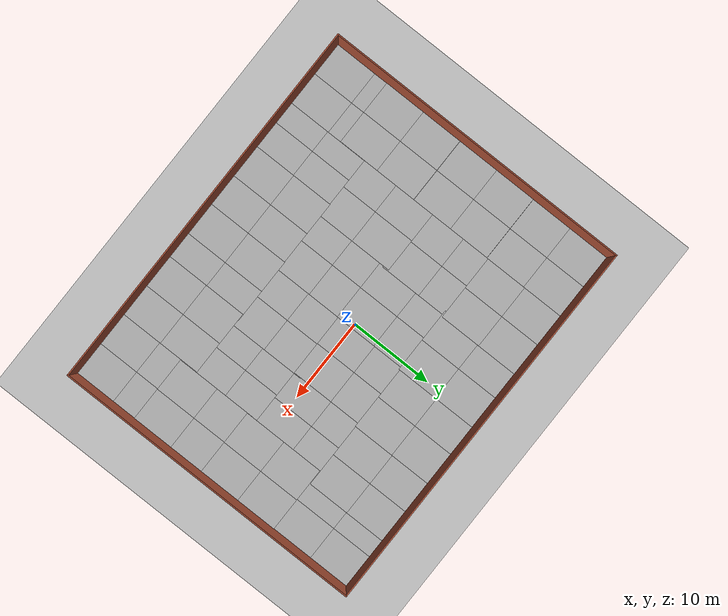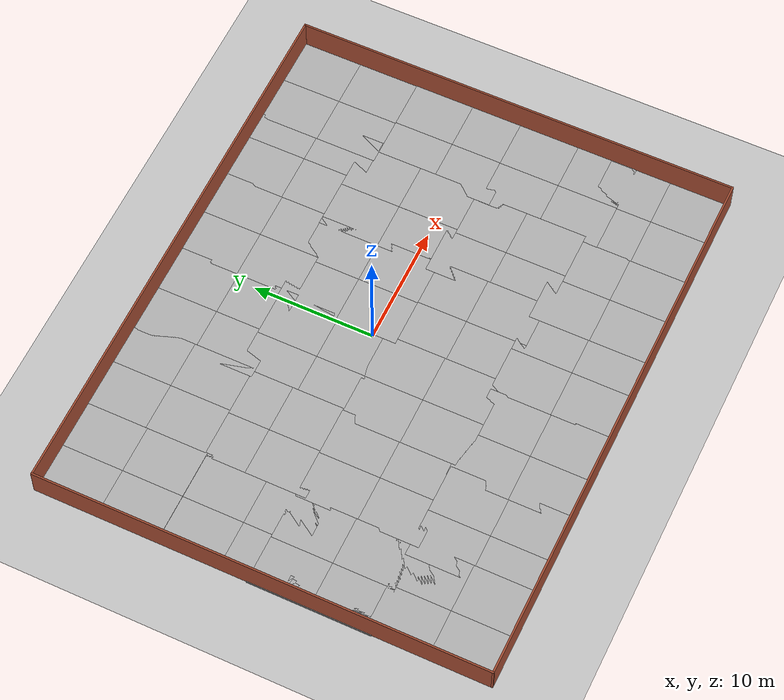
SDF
<sdf version="1.6">
 <world name="default">
  <light name="sun" type="directional">
   <pose>0 0 10 0 -0 0</pose>
   <diffuse>0.8 0.8 0.8 1</diffuse>
   <specular>0.1 0.1 0.1 1</specular>
   <attenuation>
    <range>1000</range>
    <constant>0.9</constant>
    <linear>0.01</linear>
    <quadratic>0.001</quadratic>
   </attenuation>
   <direction>-0.5 0.5 -1</direction>
  </light>
  <model name="ground_plane">
   <static>1</static>
   <link name="link">
    <collision name="collision">
     <geometry><plane><normal>0 0 1</normal><size>100 100</size></plane></geometry>
     <surface><friction><ode><mu>100</mu><mu2>50</mu2></ode></friction></surface>
    </collision>
    <visual name="visual">
     <cast_shadows>0</cast_shadows>
     <geometry><plane><normal>0 0 1</normal><size>100 100</size></plane></geometry>
     <material>
      <script><uri>file://media/materials/scripts/gazebo.material</uri><name>Gazebo/Grey</name></script>
     </material>
    </visual>
   </link>
  </model>
  <gravity>0 0 -9.8</gravity>
  <magnetic_field>6e-06 2.3e-05 -4.2e-05</magnetic_field>
  <atmosphere type="adiabatic"/>
  <physics name="default_physics" default="0" type="ode">
   <max_step_size>0.001</max_step_size>
   <real_time_factor>1</real_time_factor>
   <real_time_update_rate>1000</real_time_update_rate>
  </physics>
  <scene><ambient>0.4 0.4 0.4 1</ambient><background>0.7 0.7 0.7 1</background><shadows>1</shadows></scene>
  <spherical_coordinates>
   <surface_model>EARTH_WGS84</surface_model>
   <latitude_deg>0</latitude_deg>
   <longitude_deg>0</longitude_deg>
   <elevation>0</elevation>
   <heading_deg>0</heading_deg>
  </spherical_coordinates>
  <model name="PP_test_1">
   <pose>0.07916 -1.65832 0 0 -0 0</pose>
   <link name="Wall_11">
    <collision name="Wall_11_Collision">
     <geometry><box><size>37 0.15 2.5</size></box></geometry>
     <pose>0 0 1.25 0 -0 0</pose>
    </collision>
    <visual name="Wall_11_Visual">
     <pose>0 0 1.25 0 -0 0</pose>
     <geometry><box><size>37 0.15 2.5</size></box></geometry>
     <material>
      <script><uri>file://media/materials/scripts/gazebo.material</uri><name>Gazebo/Bricks</name></script>
      <ambient>1 1 1 1</ambient>
     </material>
    </visual>
    <pose>22.55 0 0 0 0 -1.5708</pose>
   </link>
   <link name="Wall_12">
    <collision name="Wall_12_Collision">
     <geometry><box><size>45.25 0.15 2.5</size></box></geometry>
     <pose>0 0 1.25 0 -0 0</pose>
    </collision>
    <visual name="Wall_12_Visual">
     <pose>0 0 1.25 0 -0 0</pose>
     <geometry><box><size>45.25 0.15 2.5</size></box></geometry>
     <material>
      <script><uri>file://media/materials/scripts/gazebo.material</uri><name>Gazebo/Bricks</name></script>
      <ambient>1 1 1 1</ambient>
     </material>
    </visual>
    <pose>-1e-06 -18.425 0 0 -0 3.14159</pose>
   </link>
   <link name="Wall_13">
    <collision name="Wall_13_Collision">
     <geometry><box><size>37 0.15 2.5</size></box></geometry>
     <pose>0 0 1.25 0 -0 0</pose>
    </collision>
    <visual name="Wall_13_Visual">
     <pose>0 0 1.25 0 -0 0</pose>
     <geometry><box><size>37 0.15 2.5</size></box></geometry>
     <material>
      <script><uri>file://media/materials/scripts/gazebo.material</uri><name>Gazebo/Bricks</name></script>
      <ambient>1 1 1 1</ambient>
     </material>
    </visual>
    <pose>-22.55 0 0 0 -0 1.5708</pose>
   </link>
   <link name="Wall_15">
    <collision name="Wall_15_Collision">
     <geometry><box><size>45.25 0.15 2.5</size></box></geometry>
     <pose>0 0 1.25 0 -0 0</pose>
    </collision>
    <visual name="Wall_15_Visual">
     <pose>0 0 1.25 0 -0 0</pose>
     <geometry><box><size>45.25 0.15 2.5</size></box></geometry>
     <material>
      <script><uri>file://media/materials/scripts/gazebo.material</uri><name>Gazebo/Bricks</name></script>
      <ambient>1 1 1 1</ambient>
     </material>
    </visual>
    <pose>-1e-06 18.425 0 0 -0 0</pose>
   </link>
   <static>1</static>
  </model>
  <model name="mud_box_0">
   <static>1</static>
   <link name="link">
    <collision name="collision"><geometry><box><size>8 10 0.2</size></box></geometry></collision>
    <visual name="visual_1">
     <pose>-2 2.5 0 0 -0 0</pose>
     <cast_shadows>0</cast_shadows>
     <geometry><box><size>4 5 0.2</size></box></geometry>
     <material>
      <script>
       <uri>model://mud_box/materials/scripts</uri>
       <uri>model://mud_box/materials/textures</uri>
       <name>vrc/mud</name>
      </script>
     </material>
    </visual>
    <visual name="visual_2">
     <pose>2 2.5 0 0 -0 0</pose>
     <cast_shadows>0</cast_shadows>
     <geometry><box><size>4 5 0.2</size></box></geometry>
     <material>
      <script>
       <uri>model://mud_box/materials/scripts</uri>
       <uri>model://mud_box/materials/textures</uri>
       <name>vrc/mud</name>
      </script>
     </material>
    </visual>
    <visual name="visual_3">
     <pose>2 -2.5 0 0 -0 0</pose>
     <cast_shadows>0</cast_shadows>
     <geometry><box><size>4 5 0.2</size></box></geometry>
     <material>
      <script>
       <uri>model://mud_box/materials/scripts</uri>
       <uri>model://mud_box/materials/textures</uri>
       <name>vrc/mud</name>
      </script>
     </material>
    </visual>
    <visual name="visual_4">
     <pose>-2 -2.5 0 0 -0 0</pose>
     <cast_shadows>0</cast_shadows>
     <geometry><box><size>4 5 0.2</size></box></geometry>
     <material>
      <script>
       <uri>model://mud_box/materials/scripts</uri>
       <uri>model://mud_box/materials/textures</uri>
       <name>vrc/mud</name>
      </script>
     </material>
    </visual>
   </link>
   <pose>-18.386 11.6849 0 0 -0 0</pose>
  </model>
  <model name="mud_box_0_clone">
   <static>1</static>
   <link name="link">
    <collision name="collision"><geometry><box><size>8 10 0.2</size></box></geometry></collision>
    <visual name="visual_1">
     <pose>-2 2.5 0 0 -0 0</pose>
     <cast_shadows>0</cast_shadows>
     <geometry><box><size>4 5 0.2</size></box></geometry>
     <material>
      <script>
       <uri>model://mud_box/materials/scripts</uri>
       <uri>model://mud_box/materials/textures</uri>
       <name>vrc/mud</name>
      </script>
     </material>
    </visual>
    <visual name="visual_2">
     <pose>2 2.5 0 0 -0 0</pose>
     <cast_shadows>0</cast_shadows>
     <geometry><box><size>4 5 0.2</size></box></geometry>
     <material>
      <script>
       <uri>model://mud_box/materials/scripts</uri>
       <uri>model://mud_box/materials/textures</uri>
       <name>vrc/mud</name>
      </script>
     </material>
    </visual>
    <visual name="visual_3">
     <pose>2 -2.5 0 0 -0 0</pose>
     <cast_shadows>0</cast_shadows>
     <geometry><box><size>4 5 0.2</size></box></geometry>
     <material>
      <script>
       <uri>model://mud_box/materials/scripts</uri>
       <uri>model://mud_box/materials/textures</uri>
       <name>vrc/mud</name>
      </script>
     </material>
    </visual>
    <visual name="visual_4">
     <pose>-2 -2.5 0 0 -0 0</pose>
     <cast_shadows>0</cast_shadows>
     <geometry><box><size>4 5 0.2</size></box></geometry>
     <material>
      <script>
       <uri>model://mud_box/materials/scripts</uri>
       <uri>model://mud_box/materials/textures</uri>
       <name>vrc/mud</name>
      </script>
     </material>
    </visual>
   </link>
   <pose>-18.3975 1.66408 0 0 -0 0</pose>
  </model>
  <model name="mud_box_0_clone_0">
   <static>1</static>
   <link name="link">
    <collision name="collision"><geometry><box><size>8 10 0.2</size></box></geometry></collision>
    <visual name="visual_1">
     <pose>-2 2.5 0 0 -0 0</pose>
     <cast_shadows>0</cast_shadows>
     <geometry><box><size>4 5 0.2</size></box></geometry>
     <material>
      <script>
       <uri>model://mud_box/materials/scripts</uri>
       <uri>model://mud_box/materials/textures</uri>
       <name>vrc/mud</name>
      </script>
     </material>
    </visual>
    <visual name="visual_2">
     <pose>2 2.5 0 0 -0 0</pose>
     <cast_shadows>0</cast_shadows>
     <geometry><box><size>4 5 0.2</size></box></geometry>
     <material>
      <script>
       <uri>model://mud_box/materials/scripts</uri>
       <uri>model://mud_box/materials/textures</uri>
       <name>vrc/mud</name>
      </script>
     </material>
    </visual>
    <visual name="visual_3">
     <pose>2 -2.5 0 0 -0 0</pose>
     <cast_shadows>0</cast_shadows>
     <geometry><box><size>4 5 0.2</size></box></geometry>
     <material>
      <script>
       <uri>model://mud_box/materials/scripts</uri>
       <uri>model://mud_box/materials/textures</uri>
       <name>vrc/mud</name>
      </script>
     </material>
    </visual>
    <visual name="visual_4">
     <pose>-2 -2.5 0 0 -0 0</pose>
     <cast_shadows>0</cast_shadows>
     <geometry><box><size>4 5 0.2</size></box></geometry>
     <material>
      <script>
       <uri>model://mud_box/materials/scripts</uri>
       <uri>model://mud_box/materials/textures</uri>
       <name>vrc/mud</name>
      </script>
     </material>
    </visual>
   </link>
   <pose>-18.4007 -8.3714 0 0 -0 0</pose>
  </model>
  <model name="mud_box_0_clone_0_clone">
   <static>1</static>
   <link name="link">
    <collision name="collision"><geometry><box><size>8 10 0.2</size></box></geometry></collision>
    <visual name="visual_1">
     <pose>-2 2.5 0 0 -0 0</pose>
     <cast_shadows>0</cast_shadows>
     <geometry><box><size>4 5 0.2</size></box></geometry>
     <material>
      <script>
       <uri>model://mud_box/materials/scripts</uri>
       <uri>model://mud_box/materials/textures</uri>
       <name>vrc/mud</name>
      </script>
     </material>
    </visual>
    <visual name="visual_2">
     <pose>2 2.5 0 0 -0 0</pose>
     <cast_shadows>0</cast_shadows>
     <geometry><box><size>4 5 0.2</size></box></geometry>
     <material>
      <script>
       <uri>model://mud_box/materials/scripts</uri>
       <uri>model://mud_box/materials/textures</uri>
       <name>vrc/mud</name>
      </script>
     </material>
    </visual>
    <visual name="visual_3">
     <pose>2 -2.5 0 0 -0 0</pose>
     <cast_shadows>0</cast_shadows>
     <geometry><box><size>4 5 0.2</size></box></geometry>
     <material>
      <script>
       <uri>model://mud_box/materials/scripts</uri>
       <uri>model://mud_box/materials/textures</uri>
       <name>vrc/mud</name>
      </script>
     </material>
    </visual>
    <visual name="visual_4">
     <pose>-2 -2.5 0 0 -0 0</pose>
     <cast_shadows>0</cast_shadows>
     <geometry><box><size>4 5 0.2</size></box></geometry>
     <material>
      <script>
       <uri>model://mud_box/materials/scripts</uri>
       <uri>model://mud_box/materials/textures</uri>
       <name>vrc/mud</name>
      </script>
     </material>
    </visual>
   </link>
   <pose>-18.3721 -15.0101 0 0 -0 0</pose>
  </model>
  <model name="mud_box_0_clone_0_clone_0">
   <static>1</static>
   <link name="link">
    <collision name="collision"><geometry><box><size>8 10 0.2</size></box></geometry></collision>
    <visual name="visual_1">
     <pose>-2 2.5 0 0 -0 0</pose>
     <cast_shadows>0</cast_shadows>
     <geometry><box><size>4 5 0.2</size></box></geometry>
     <material>
      <script>
       <uri>model://mud_box/materials/scripts</uri>
       <uri>model://mud_box/materials/textures</uri>
       <name>vrc/mud</name>
      </script>
     </material>
    </visual>
    <visual name="visual_2">
     <pose>2 2.5 0 0 -0 0</pose>
     <cast_shadows>0</cast_shadows>
     <geometry><box><size>4 5 0.2</size></box></geometry>
     <material>
      <script>
       <uri>model://mud_box/materials/scripts</uri>
       <uri>model://mud_box/materials/textures</uri>
       <name>vrc/mud</name>
      </script>
     </material>
    </visual>
    <visual name="visual_3">
     <pose>2 -2.5 0 0 -0 0</pose>
     <cast_shadows>0</cast_shadows>
     <geometry><box><size>4 5 0.2</size></box></geometry>
     <material>
      <script>
       <uri>model://mud_box/materials/scripts</uri>
       <uri>model://mud_box/materials/textures</uri>
       <name>vrc/mud</name>
      </script>
     </material>
    </visual>
    <visual name="visual_4">
     <pose>-2 -2.5 0 0 -0 0</pose>
     <cast_shadows>0</cast_shadows>
     <geometry><box><size>4 5 0.2</size></box></geometry>
     <material>
      <script>
       <uri>model://mud_box/materials/scripts</uri>
       <uri>model://mud_box/materials/textures</uri>
       <name>vrc/mud</name>
      </script>
     </material>
    </visual>
   </link>
   <pose>-18.5856 -5.66079 0 0 -0 0</pose>
  </model>
  <model name="mud_box_0_clone_0_clone_1">
   <static>1</static>
   <link name="link">
    <collision name="collision"><geometry><box><size>8 10 0.2</size></box></geometry></collision>
    <visual name="visual_1">
     <pose>-2 2.5 0 0 -0 0</pose>
     <cast_shadows>0</cast_shadows>
     <geometry><box><size>4 5 0.2</size></box></geometry>
     <material>
      <script>
       <uri>model://mud_box/materials/scripts</uri>
       <uri>model://mud_box/materials/textures</uri>
       <name>vrc/mud</name>
      </script>
     </material>
    </visual>
    <visual name="visual_2">
     <pose>2 2.5 0 0 -0 0</pose>
     <cast_shadows>0</cast_shadows>
     <geometry><box><size>4 5 0.2</size></box></geometry>
     <material>
      <script>
       <uri>model://mud_box/materials/scripts</uri>
       <uri>model://mud_box/materials/textures</uri>
       <name>vrc/mud</name>
      </script>
     </material>
    </visual>
    <visual name="visual_3">
     <pose>2 -2.5 0 0 -0 0</pose>
     <cast_shadows>0</cast_shadows>
     <geometry><box><size>4 5 0.2</size></box></geometry>
     <material>
      <script>
       <uri>model://mud_box/materials/scripts</uri>
       <uri>model://mud_box/materials/textures</uri>
       <name>vrc/mud</name>
      </script>
     </material>
    </visual>
    <visual name="visual_4">
     <pose>-2 -2.5 0 0 -0 0</pose>
     <cast_shadows>0</cast_shadows>
     <geometry><box><size>4 5 0.2</size></box></geometry>
     <material>
      <script>
       <uri>model://mud_box/materials/scripts</uri>
       <uri>model://mud_box/materials/textures</uri>
       <name>vrc/mud</name>
      </script>
     </material>
    </visual>
   </link>
   <pose>-10.4439 11.8295 0 0 -0 0</pose>
  </model>
  <model name="mud_box_0_clone_0_clone_2">
   <static>1</static>
   <link name="link">
    <collision name="collision"><geometry><box><size>8 10 0.2</size></box></geometry></collision>
    <visual name="visual_1">
     <pose>-2 2.5 0 0 -0 0</pose>
     <cast_shadows>0</cast_shadows>
     <geometry><box><size>4 5 0.2</size></box></geometry>
     <material>
      <script>
       <uri>model://mud_box/materials/scripts</uri>
       <uri>model://mud_box/materials/textures</uri>
       <name>vrc/mud</name>
      </script>
     </material>
    </visual>
    <visual name="visual_2">
     <pose>2 2.5 0 0 -0 0</pose>
     <cast_shadows>0</cast_shadows>
     <geometry><box><size>4 5 0.2</size></box></geometry>
     <material>
      <script>
       <uri>model://mud_box/materials/scripts</uri>
       <uri>model://mud_box/materials/textures</uri>
       <name>vrc/mud</name>
      </script>
     </material>
    </visual>
    <visual name="visual_3">
     <pose>2 -2.5 0 0 -0 0</pose>
     <cast_shadows>0</cast_shadows>
     <geometry><box><size>4 5 0.2</size></box></geometry>
     <material>
      <script>
       <uri>model://mud_box/materials/scripts</uri>
       <uri>model://mud_box/materials/textures</uri>
       <name>vrc/mud</name>
      </script>
     </material>
    </visual>
    <visual name="visual_4">
     <pose>-2 -2.5 0 0 -0 0</pose>
     <cast_shadows>0</cast_shadows>
     <geometry><box><size>4 5 0.2</size></box></geometry>
     <material>
      <script>
       <uri>model://mud_box/materials/scripts</uri>
       <uri>model://mud_box/materials/textures</uri>
       <name>vrc/mud</name>
      </script>
     </material>
    </visual>
   </link>
   <pose>-3.1785 11.6817 0 0 -0 0</pose>
  </model>
  <model name="mud_box_0_clone_0_clone_3">
   <static>1</static>
   <link name="link">
    <collision name="collision"><geometry><box><size>8 10 0.2</size></box></geometry></collision>
    <visual name="visual_1">
     <pose>-2 2.5 0 0 -0 0</pose>
     <cast_shadows>0</cast_shadows>
     <geometry><box><size>4 5 0.2</size></box></geometry>
     <material>
      <script>
       <uri>model://mud_box/materials/scripts</uri>
       <uri>model://mud_box/materials/textures</uri>
       <name>vrc/mud</name>
      </script>
     </material>
    </visual>
    <visual name="visual_2">
     <pose>2 2.5 0 0 -0 0</pose>
     <cast_shadows>0</cast_shadows>
     <geometry><box><size>4 5 0.2</size></box></geometry>
     <material>
      <script>
       <uri>model://mud_box/materials/scripts</uri>
       <uri>model://mud_box/materials/textures</uri>
       <name>vrc/mud</name>
      </script>
     </material>
    </visual>
    <visual name="visual_3">
     <pose>2 -2.5 0 0 -0 0</pose>
     <cast_shadows>0</cast_shadows>
     <geometry><box><size>4 5 0.2</size></box></geometry>
     <material>
      <script>
       <uri>model://mud_box/materials/scripts</uri>
       <uri>model://mud_box/materials/textures</uri>
       <name>vrc/mud</name>
      </script>
     </material>
    </visual>
    <visual name="visual_4">
     <pose>-2 -2.5 0 0 -0 0</pose>
     <cast_shadows>0</cast_shadows>
     <geometry><box><size>4 5 0.2</size></box></geometry>
     <material>
      <script>
       <uri>model://mud_box/materials/scripts</uri>
       <uri>model://mud_box/materials/textures</uri>
       <name>vrc/mud</name>
      </script>
     </material>
    </visual>
   </link>
   <pose>4.51951 11.8195 0 0 -0 0</pose>
  </model>
  <model name="mud_box_0_clone_0_clone_4">
   <static>1</static>
   <link name="link">
    <collision name="collision"><geometry><box><size>8 10 0.2</size></box></geometry></collision>
    <visual name="visual_1">
     <pose>-2 2.5 0 0 -0 0</pose>
     <cast_shadows>0</cast_shadows>
     <geometry><box><size>4 5 0.2</size></box></geometry>
     <material>
      <script>
       <uri>model://mud_box/materials/scripts</uri>
       <uri>model://mud_box/materials/textures</uri>
       <name>vrc/mud</name>
      </script>
     </material>
    </visual>
    <visual name="visual_2">
     <pose>2 2.5 0 0 -0 0</pose>
     <cast_shadows>0</cast_shadows>
     <geometry><box><size>4 5 0.2</size></box></geometry>
     <material>
      <script>
       <uri>model://mud_box/materials/scripts</uri>
       <uri>model://mud_box/materials/textures</uri>
       <name>vrc/mud</name>
      </script>
     </material>
    </visual>
    <visual name="visual_3">
     <pose>2 -2.5 0 0 -0 0</pose>
     <cast_shadows>0</cast_shadows>
     <geometry><box><size>4 5 0.2</size></box></geometry>
     <material>
      <script>
       <uri>model://mud_box/materials/scripts</uri>
       <uri>model://mud_box/materials/textures</uri>
       <name>vrc/mud</name>
      </script>
     </material>
    </visual>
    <visual name="visual_4">
     <pose>-2 -2.5 0 0 -0 0</pose>
     <cast_shadows>0</cast_shadows>
     <geometry><box><size>4 5 0.2</size></box></geometry>
     <material>
      <script>
       <uri>model://mud_box/materials/scripts</uri>
       <uri>model://mud_box/materials/textures</uri>
       <name>vrc/mud</name>
      </script>
     </material>
    </visual>
   </link>
   <pose>12.3538 11.8794 0 0 -0 0</pose>
  </model>
  <model name="mud_box_0_clone_0_clone_5">
   <static>1</static>
   <link name="link">
    <collision name="collision"><geometry><box><size>8 10 0.2</size></box></geometry></collision>
    <visual name="visual_1">
     <pose>-2 2.5 0 0 -0 0</pose>
     <cast_shadows>0</cast_shadows>
     <geometry><box><size>4 5 0.2</size></box></geometry>
     <material>
      <script>
       <uri>model://mud_box/materials/scripts</uri>
       <uri>model://mud_box/materials/textures</uri>
       <name>vrc/mud</name>
      </script>
     </material>
    </visual>
    <visual name="visual_2">
     <pose>2 2.5 0 0 -0 0</pose>
     <cast_shadows>0</cast_shadows>
     <geometry><box><size>4 5 0.2</size></box></geometry>
     <material>
      <script>
       <uri>model://mud_box/materials/scripts</uri>
       <uri>model://mud_box/materials/textures</uri>
       <name>vrc/mud</name>
      </script>
     </material>
    </visual>
    <visual name="visual_3">
     <pose>2 -2.5 0 0 -0 0</pose>
     <cast_shadows>0</cast_shadows>
     <geometry><box><size>4 5 0.2</size></box></geometry>
     <material>
      <script>
       <uri>model://mud_box/materials/scripts</uri>
       <uri>model://mud_box/materials/textures</uri>
       <name>vrc/mud</name>
      </script>
     </material>
    </visual>
    <visual name="visual_4">
     <pose>-2 -2.5 0 0 -0 0</pose>
     <cast_shadows>0</cast_shadows>
     <geometry><box><size>4 5 0.2</size></box></geometry>
     <material>
      <script>
       <uri>model://mud_box/materials/scripts</uri>
       <uri>model://mud_box/materials/textures</uri>
       <name>vrc/mud</name>
      </script>
     </material>
    </visual>
   </link>
   <pose>18.5211 11.8232 0 0 -0 0</pose>
  </model>
  <model name="mud_box_0_clone_0_clone_6">
   <static>1</static>
   <link name="link">
    <collision name="collision"><geometry><box><size>8 10 0.2</size></box></geometry></collision>
    <visual name="visual_1">
     <pose>-2 2.5 0 0 -0 0</pose>
     <cast_shadows>0</cast_shadows>
     <geometry><box><size>4 5 0.2</size></box></geometry>
     <material>
      <script>
       <uri>model://mud_box/materials/scripts</uri>
       <uri>model://mud_box/materials/textures</uri>
       <name>vrc/mud</name>
      </script>
     </material>
    </visual>
    <visual name="visual_2">
     <pose>2 2.5 0 0 -0 0</pose>
     <cast_shadows>0</cast_shadows>
     <geometry><box><size>4 5 0.2</size></box></geometry>
     <material>
      <script>
       <uri>model://mud_box/materials/scripts</uri>
       <uri>model://mud_box/materials/textures</uri>
       <name>vrc/mud</name>
      </script>
     </material>
    </visual>
    <visual name="visual_3">
     <pose>2 -2.5 0 0 -0 0</pose>
     <cast_shadows>0</cast_shadows>
     <geometry><box><size>4 5 0.2</size></box></geometry>
     <material>
      <script>
       <uri>model://mud_box/materials/scripts</uri>
       <uri>model://mud_box/materials/textures</uri>
       <name>vrc/mud</name>
      </script>
     </material>
    </visual>
    <visual name="visual_4">
     <pose>-2 -2.5 0 0 -0 0</pose>
     <cast_shadows>0</cast_shadows>
     <geometry><box><size>4 5 0.2</size></box></geometry>
     <material>
      <script>
       <uri>model://mud_box/materials/scripts</uri>
       <uri>model://mud_box/materials/textures</uri>
       <name>vrc/mud</name>
      </script>
     </material>
    </visual>
   </link>
   <pose>18.5976 1.88863 0 0 -0 0</pose>
  </model>
  <model name="mud_box_0_clone_0_clone_7">
   <static>1</static>
   <link name="link">
    <collision name="collision"><geometry><box><size>8 10 0.2</size></box></geometry></collision>
    <visual name="visual_1">
     <pose>-2 2.5 0 0 -0 0</pose>
     <cast_shadows>0</cast_shadows>
     <geometry><box><size>4 5 0.2</size></box></geometry>
     <material>
      <script>
       <uri>model://mud_box/materials/scripts</uri>
       <uri>model://mud_box/materials/textures</uri>
       <name>vrc/mud</name>
      </script>
     </material>
    </visual>
    <visual name="visual_2">
     <pose>2 2.5 0 0 -0 0</pose>
     <cast_shadows>0</cast_shadows>
     <geometry><box><size>4 5 0.2</size></box></geometry>
     <material>
      <script>
       <uri>model://mud_box/materials/scripts</uri>
       <uri>model://mud_box/materials/textures</uri>
       <name>vrc/mud</name>
      </script>
     </material>
    </visual>
    <visual name="visual_3">
     <pose>2 -2.5 0 0 -0 0</pose>
     <cast_shadows>0</cast_shadows>
     <geometry><box><size>4 5 0.2</size></box></geometry>
     <material>
      <script>
       <uri>model://mud_box/materials/scripts</uri>
       <uri>model://mud_box/materials/textures</uri>
       <name>vrc/mud</name>
      </script>
     </material>
    </visual>
    <visual name="visual_4">
     <pose>-2 -2.5 0 0 -0 0</pose>
     <cast_shadows>0</cast_shadows>
     <geometry><box><size>4 5 0.2</size></box></geometry>
     <material>
      <script>
       <uri>model://mud_box/materials/scripts</uri>
       <uri>model://mud_box/materials/textures</uri>
       <name>vrc/mud</name>
      </script>
     </material>
    </visual>
   </link>
   <pose>18.5751 -7.26582 0 0 -0 0</pose>
  </model>
  <model name="mud_box_0_clone_0_clone_8">
   <static>1</static>
   <link name="link">
    <collision name="collision"><geometry><box><size>8 10 0.2</size></box></geometry></collision>
    <visual name="visual_1">
     <pose>-2 2.5 0 0 -0 0</pose>
     <cast_shadows>0</cast_shadows>
     <geometry><box><size>4 5 0.2</size></box></geometry>
     <material>
      <script>
       <uri>model://mud_box/materials/scripts</uri>
       <uri>model://mud_box/materials/textures</uri>
       <name>vrc/mud</name>
      </script>
     </material>
    </visual>
    <visual name="visual_2">
     <pose>2 2.5 0 0 -0 0</pose>
     <cast_shadows>0</cast_shadows>
     <geometry><box><size>4 5 0.2</size></box></geometry>
     <material>
      <script>
       <uri>model://mud_box/materials/scripts</uri>
       <uri>model://mud_box/materials/textures</uri>
       <name>vrc/mud</name>
      </script>
     </material>
    </visual>
    <visual name="visual_3">
     <pose>2 -2.5 0 0 -0 0</pose>
     <cast_shadows>0</cast_shadows>
     <geometry><box><size>4 5 0.2</size></box></geometry>
     <material>
      <script>
       <uri>model://mud_box/materials/scripts</uri>
       <uri>model://mud_box/materials/textures</uri>
       <name>vrc/mud</name>
      </script>
     </material>
    </visual>
    <visual name="visual_4">
     <pose>-2 -2.5 0 0 -0 0</pose>
     <cast_shadows>0</cast_shadows>
     <geometry><box><size>4 5 0.2</size></box></geometry>
     <material>
      <script>
       <uri>model://mud_box/materials/scripts</uri>
       <uri>model://mud_box/materials/textures</uri>
       <name>vrc/mud</name>
      </script>
     </material>
    </visual>
   </link>
   <pose>18.5301 -15.1417 0 0 -0 0</pose>
  </model>
  <model name="mud_box_0_clone_0_clone_9">
   <static>1</static>
   <link name="link">
    <collision name="collision"><geometry><box><size>8 10 0.2</size></box></geometry></collision>
    <visual name="visual_1">
     <pose>-2 2.5 0 0 -0 0</pose>
     <cast_shadows>0</cast_shadows>
     <geometry><box><size>4 5 0.2</size></box></geometry>
     <material>
      <script>
       <uri>model://mud_box/materials/scripts</uri>
       <uri>model://mud_box/materials/textures</uri>
       <name>vrc/mud</name>
      </script>
     </material>
    </visual>
    <visual name="visual_2">
     <pose>2 2.5 0 0 -0 0</pose>
     <cast_shadows>0</cast_shadows>
     <geometry><box><size>4 5 0.2</size></box></geometry>
     <material>
      <script>
       <uri>model://mud_box/materials/scripts</uri>
       <uri>model://mud_box/materials/textures</uri>
       <name>vrc/mud</name>
      </script>
     </material>
    </visual>
    <visual name="visual_3">
     <pose>2 -2.5 0 0 -0 0</pose>
     <cast_shadows>0</cast_shadows>
     <geometry><box><size>4 5 0.2</size></box></geometry>
     <material>
      <script>
       <uri>model://mud_box/materials/scripts</uri>
       <uri>model://mud_box/materials/textures</uri>
       <name>vrc/mud</name>
      </script>
     </material>
    </visual>
    <visual name="visual_4">
     <pose>-2 -2.5 0 0 -0 0</pose>
     <cast_shadows>0</cast_shadows>
     <geometry><box><size>4 5 0.2</size></box></geometry>
     <material>
      <script>
       <uri>model://mud_box/materials/scripts</uri>
       <uri>model://mud_box/materials/textures</uri>
       <name>vrc/mud</name>
      </script>
     </material>
    </visual>
   </link>
   <pose>10.6001 -15.069 0 0 -0 0</pose>
  </model>
  <model name="mud_box_0_clone_0_clone_10">
   <static>1</static>
   <link name="link">
    <collision name="collision"><geometry><box><size>8 10 0.2</size></box></geometry></collision>
    <visual name="visual_1">
     <pose>-2 2.5 0 0 -0 0</pose>
     <cast_shadows>0</cast_shadows>
     <geometry><box><size>4 5 0.2</size></box></geometry>
     <material>
      <script>
       <uri>model://mud_box/materials/scripts</uri>
       <uri>model://mud_box/materials/textures</uri>
       <name>vrc/mud</name>
      </script>
     </material>
    </visual>
    <visual name="visual_2">
     <pose>2 2.5 0 0 -0 0</pose>
     <cast_shadows>0</cast_shadows>
     <geometry><box><size>4 5 0.2</size></box></geometry>
     <material>
      <script>
       <uri>model://mud_box/materials/scripts</uri>
       <uri>model://mud_box/materials/textures</uri>
       <name>vrc/mud</name>
      </script>
     </material>
    </visual>
    <visual name="visual_3">
     <pose>2 -2.5 0 0 -0 0</pose>
     <cast_shadows>0</cast_shadows>
     <geometry><box><size>4 5 0.2</size></box></geometry>
     <material>
      <script>
       <uri>model://mud_box/materials/scripts</uri>
       <uri>model://mud_box/materials/textures</uri>
       <name>vrc/mud</name>
      </script>
     </material>
    </visual>
    <visual name="visual_4">
     <pose>-2 -2.5 0 0 -0 0</pose>
     <cast_shadows>0</cast_shadows>
     <geometry><box><size>4 5 0.2</size></box></geometry>
     <material>
      <script>
       <uri>model://mud_box/materials/scripts</uri>
       <uri>model://mud_box/materials/textures</uri>
       <name>vrc/mud</name>
      </script>
     </material>
    </visual>
   </link>
   <pose>3.43965 -15.0021 0 0 -0 0</pose>
  </model>
  <model name="mud_box_0_clone_0_clone_11">
   <static>1</static>
   <link name="link">
    <collision name="collision"><geometry><box><size>8 10 0.2</size></box></geometry></collision>
    <visual name="visual_1">
     <pose>-2 2.5 0 0 -0 0</pose>
     <cast_shadows>0</cast_shadows>
     <geometry><box><size>4 5 0.2</size></box></geometry>
     <material>
      <script>
       <uri>model://mud_box/materials/scripts</uri>
       <uri>model://mud_box/materials/textures</uri>
       <name>vrc/mud</name>
      </script>
     </material>
    </visual>
    <visual name="visual_2">
     <pose>2 2.5 0 0 -0 0</pose>
     <cast_shadows>0</cast_shadows>
     <geometry><box><size>4 5 0.2</size></box></geometry>
     <material>
      <script>
       <uri>model://mud_box/materials/scripts</uri>
       <uri>model://mud_box/materials/textures</uri>
       <name>vrc/mud</name>
      </script>
     </material>
    </visual>
    <visual name="visual_3">
     <pose>2 -2.5 0 0 -0 0</pose>
     <cast_shadows>0</cast_shadows>
     <geometry><box><size>4 5 0.2</size></box></geometry>
     <material>
      <script>
       <uri>model://mud_box/materials/scripts</uri>
       <uri>model://mud_box/materials/textures</uri>
       <name>vrc/mud</name>
      </script>
     </material>
    </visual>
    <visual name="visual_4">
     <pose>-2 -2.5 0 0 -0 0</pose>
     <cast_shadows>0</cast_shadows>
     <geometry><box><size>4 5 0.2</size></box></geometry>
     <material>
      <script>
       <uri>model://mud_box/materials/scripts</uri>
       <uri>model://mud_box/materials/textures</uri>
       <name>vrc/mud</name>
      </script>
     </material>
    </visual>
   </link>
   <pose>-4.43407 -15.0408 0 0 -0 0</pose>
  </model>
  <model name="mud_box_0_clone_0_clone_12">
   <static>1</static>
   <link name="link">
    <collision name="collision"><geometry><box><size>8 10 0.2</size></box></geometry></collision>
    <visual name="visual_1">
     <pose>-2 2.5 0 0 -0 0</pose>
     <cast_shadows>0</cast_shadows>
     <geometry><box><size>4 5 0.2</size></box></geometry>
     <material>
      <script>
       <uri>model://mud_box/materials/scripts</uri>
       <uri>model://mud_box/materials/textures</uri>
       <name>vrc/mud</name>
      </script>
     </material>
    </visual>
    <visual name="visual_2">
     <pose>2 2.5 0 0 -0 0</pose>
     <cast_shadows>0</cast_shadows>
     <geometry><box><size>4 5 0.2</size></box></geometry>
     <material>
      <script>
       <uri>model://mud_box/materials/scripts</uri>
       <uri>model://mud_box/materials/textures</uri>
       <name>vrc/mud</name>
      </script>
     </material>
    </visual>
    <visual name="visual_3">
     <pose>2 -2.5 0 0 -0 0</pose>
     <cast_shadows>0</cast_shadows>
     <geometry><box><size>4 5 0.2</size></box></geometry>
     <material>
      <script>
       <uri>model://mud_box/materials/scripts</uri>
       <uri>model://mud_box/materials/textures</uri>
       <name>vrc/mud</name>
      </script>
     </material>
    </visual>
    <visual name="visual_4">
     <pose>-2 -2.5 0 0 -0 0</pose>
     <cast_shadows>0</cast_shadows>
     <geometry><box><size>4 5 0.2</size></box></geometry>
     <material>
      <script>
       <uri>model://mud_box/materials/scripts</uri>
       <uri>model://mud_box/materials/textures</uri>
       <name>vrc/mud</name>
      </script>
     </material>
    </visual>
   </link>
   <pose>-11.7039 -15.0908 0 0 -0 0</pose>
  </model>
  <model name="mud_box_0_clone_0_clone_13">
   <static>1</static>
   <link name="link">
    <collision name="collision"><geometry><box><size>8 10 0.2</size></box></geometry></collision>
    <visual name="visual_1">
     <pose>-2 2.5 0 0 -0 0</pose>
     <cast_shadows>0</cast_shadows>
     <geometry><box><size>4 5 0.2</size></box></geometry>
     <material>
      <script>
       <uri>model://mud_box/materials/scripts</uri>
       <uri>model://mud_box/materials/textures</uri>
       <name>vrc/mud</name>
      </script>
     </material>
    </visual>
    <visual name="visual_2">
     <pose>2 2.5 0 0 -0 0</pose>
     <cast_shadows>0</cast_shadows>
     <geometry><box><size>4 5 0.2</size></box></geometry>
     <material>
      <script>
       <uri>model://mud_box/materials/scripts</uri>
       <uri>model://mud_box/materials/textures</uri>
       <name>vrc/mud</name>
      </script>
     </material>
    </visual>
    <visual name="visual_3">
     <pose>2 -2.5 0 0 -0 0</pose>
     <cast_shadows>0</cast_shadows>
     <geometry><box><size>4 5 0.2</size></box></geometry>
     <material>
      <script>
       <uri>model://mud_box/materials/scripts</uri>
       <uri>model://mud_box/materials/textures</uri>
       <name>vrc/mud</name>
      </script>
     </material>
    </visual>
    <visual name="visual_4">
     <pose>-2 -2.5 0 0 -0 0</pose>
     <cast_shadows>0</cast_shadows>
     <geometry><box><size>4 5 0.2</size></box></geometry>
     <material>
      <script>
       <uri>model://mud_box/materials/scripts</uri>
       <uri>model://mud_box/materials/textures</uri>
       <name>vrc/mud</name>
      </script>
     </material>
    </visual>
   </link>
   <pose>-10.8104 -5.77116 0 0 -0 0</pose>
  </model>
  <model name="mud_box_0_clone_0_clone_14">
   <static>1</static>
   <link name="link">
    <collision name="collision"><geometry><box><size>8 10 0.2</size></box></geometry></collision>
    <visual name="visual_1">
     <pose>-2 2.5 0 0 -0 0</pose>
     <cast_shadows>0</cast_shadows>
     <geometry><box><size>4 5 0.2</size></box></geometry>
     <material>
      <script>
       <uri>model://mud_box/materials/scripts</uri>
       <uri>model://mud_box/materials/textures</uri>
       <name>vrc/mud</name>
      </script>
     </material>
    </visual>
    <visual name="visual_2">
     <pose>2 2.5 0 0 -0 0</pose>
     <cast_shadows>0</cast_shadows>
     <geometry><box><size>4 5 0.2</size></box></geometry>
     <material>
      <script>
       <uri>model://mud_box/materials/scripts</uri>
       <uri>model://mud_box/materials/textures</uri>
       <name>vrc/mud</name>
      </script>
     </material>
    </visual>
    <visual name="visual_3">
     <pose>2 -2.5 0 0 -0 0</pose>
     <cast_shadows>0</cast_shadows>
     <geometry><box><size>4 5 0.2</size></box></geometry>
     <material>
      <script>
       <uri>model://mud_box/materials/scripts</uri>
       <uri>model://mud_box/materials/textures</uri>
       <name>vrc/mud</name>
      </script>
     </material>
    </visual>
    <visual name="visual_4">
     <pose>-2 -2.5 0 0 -0 0</pose>
     <cast_shadows>0</cast_shadows>
     <geometry><box><size>4 5 0.2</size></box></geometry>
     <material>
      <script>
       <uri>model://mud_box/materials/scripts</uri>
       <uri>model://mud_box/materials/textures</uri>
       <name>vrc/mud</name>
      </script>
     </material>
    </visual>
   </link>
   <pose>-10.6763 3.44307 0 0 -0 0</pose>
  </model>
  <model name="mud_box_0_clone_0_clone_15">
   <static>1</static>
   <link name="link">
    <collision name="collision"><geometry><box><size>8 10 0.2</size></box></geometry></collision>
    <visual name="visual_1">
     <pose>-2 2.5 0 0 -0 0</pose>
     <cast_shadows>0</cast_shadows>
     <geometry><box><size>4 5 0.2</size></box></geometry>
     <material>
      <script>
       <uri>model://mud_box/materials/scripts</uri>
       <uri>model://mud_box/materials/textures</uri>
       <name>vrc/mud</name>
      </script>
     </material>
    </visual>
    <visual name="visual_2">
     <pose>2 2.5 0 0 -0 0</pose>
     <cast_shadows>0</cast_shadows>
     <geometry><box><size>4 5 0.2</size></box></geometry>
     <material>
      <script>
       <uri>model://mud_box/materials/scripts</uri>
       <uri>model://mud_box/materials/textures</uri>
       <name>vrc/mud</name>
      </script>
     </material>
    </visual>
    <visual name="visual_3">
     <pose>2 -2.5 0 0 -0 0</pose>
     <cast_shadows>0</cast_shadows>
     <geometry><box><size>4 5 0.2</size></box></geometry>
     <material>
      <script>
       <uri>model://mud_box/materials/scripts</uri>
       <uri>model://mud_box/materials/textures</uri>
       <name>vrc/mud</name>
      </script>
     </material>
    </visual>
    <visual name="visual_4">
     <pose>-2 -2.5 0 0 -0 0</pose>
     <cast_shadows>0</cast_shadows>
     <geometry><box><size>4 5 0.2</size></box></geometry>
     <material>
      <script>
       <uri>model://mud_box/materials/scripts</uri>
       <uri>model://mud_box/materials/textures</uri>
       <name>vrc/mud</name>
      </script>
     </material>
    </visual>
   </link>
   <pose>-3.47173 3.0256 0 0 -0 0</pose>
  </model>
  <model name="mud_box_0_clone_0_clone_16">
   <static>1</static>
   <link name="link">
    <collision name="collision"><geometry><box><size>8 10 0.2</size></box></geometry></collision>
    <visual name="visual_1">
     <pose>-2 2.5 0 0 -0 0</pose>
     <cast_shadows>0</cast_shadows>
     <geometry><box><size>4 5 0.2</size></box></geometry>
     <material>
      <script>
       <uri>model://mud_box/materials/scripts</uri>
       <uri>model://mud_box/materials/textures</uri>
       <name>vrc/mud</name>
      </script>
     </material>
    </visual>
    <visual name="visual_2">
     <pose>2 2.5 0 0 -0 0</pose>
     <cast_shadows>0</cast_shadows>
     <geometry><box><size>4 5 0.2</size></box></geometry>
     <material>
      <script>
       <uri>model://mud_box/materials/scripts</uri>
       <uri>model://mud_box/materials/textures</uri>
       <name>vrc/mud</name>
      </script>
     </material>
    </visual>
    <visual name="visual_3">
     <pose>2 -2.5 0 0 -0 0</pose>
     <cast_shadows>0</cast_shadows>
     <geometry><box><size>4 5 0.2</size></box></geometry>
     <material>
      <script>
       <uri>model://mud_box/materials/scripts</uri>
       <uri>model://mud_box/materials/textures</uri>
       <name>vrc/mud</name>
      </script>
     </material>
    </visual>
    <visual name="visual_4">
     <pose>-2 -2.5 0 0 -0 0</pose>
     <cast_shadows>0</cast_shadows>
     <geometry><box><size>4 5 0.2</size></box></geometry>
     <material>
      <script>
       <uri>model://mud_box/materials/scripts</uri>
       <uri>model://mud_box/materials/textures</uri>
       <name>vrc/mud</name>
      </script>
     </material>
    </visual>
   </link>
   <pose>-3.4851 -5.82424 0 0 -0 0</pose>
  </model>
  <model name="mud_box_0_clone_0_clone_17">
   <static>1</static>
   <link name="link">
    <collision name="collision"><geometry><box><size>8 10 0.2</size></box></geometry></collision>
    <visual name="visual_1">
     <pose>-2 2.5 0 0 -0 0</pose>
     <cast_shadows>0</cast_shadows>
     <geometry><box><size>4 5 0.2</size></box></geometry>
     <material>
      <script>
       <uri>model://mud_box/materials/scripts</uri>
       <uri>model://mud_box/materials/textures</uri>
       <name>vrc/mud</name>
      </script>
     </material>
    </visual>
    <visual name="visual_2">
     <pose>2 2.5 0 0 -0 0</pose>
     <cast_shadows>0</cast_shadows>
     <geometry><box><size>4 5 0.2</size></box></geometry>
     <material>
      <script>
       <uri>model://mud_box/materials/scripts</uri>
       <uri>model://mud_box/materials/textures</uri>
       <name>vrc/mud</name>
      </script>
     </material>
    </visual>
    <visual name="visual_3">
     <pose>2 -2.5 0 0 -0 0</pose>
     <cast_shadows>0</cast_shadows>
     <geometry><box><size>4 5 0.2</size></box></geometry>
     <material>
      <script>
       <uri>model://mud_box/materials/scripts</uri>
       <uri>model://mud_box/materials/textures</uri>
       <name>vrc/mud</name>
      </script>
     </material>
    </visual>
    <visual name="visual_4">
     <pose>-2 -2.5 0 0 -0 0</pose>
     <cast_shadows>0</cast_shadows>
     <geometry><box><size>4 5 0.2</size></box></geometry>
     <material>
      <script>
       <uri>model://mud_box/materials/scripts</uri>
       <uri>model://mud_box/materials/textures</uri>
       <name>vrc/mud</name>
      </script>
     </material>
    </visual>
   </link>
   <pose>4.08605 3.1384 0 0 -0 0</pose>
  </model>
  <model name="mud_box_0_clone_0_clone_18">
   <static>1</static>
   <link name="link">
    <collision name="collision"><geometry><box><size>8 10 0.2</size></box></geometry></collision>
    <visual name="visual_1">
     <pose>-2 2.5 0 0 -0 0</pose>
     <cast_shadows>0</cast_shadows>
     <geometry><box><size>4 5 0.2</size></box></geometry>
     <material>
      <script>
       <uri>model://mud_box/materials/scripts</uri>
       <uri>model://mud_box/materials/textures</uri>
       <name>vrc/mud</name>
      </script>
     </material>
    </visual>
    <visual name="visual_2">
     <pose>2 2.5 0 0 -0 0</pose>
     <cast_shadows>0</cast_shadows>
     <geometry><box><size>4 5 0.2</size></box></geometry>
     <material>
      <script>
       <uri>model://mud_box/materials/scripts</uri>
       <uri>model://mud_box/materials/textures</uri>
       <name>vrc/mud</name>
      </script>
     </material>
    </visual>
    <visual name="visual_3">
     <pose>2 -2.5 0 0 -0 0</pose>
     <cast_shadows>0</cast_shadows>
     <geometry><box><size>4 5 0.2</size></box></geometry>
     <material>
      <script>
       <uri>model://mud_box/materials/scripts</uri>
       <uri>model://mud_box/materials/textures</uri>
       <name>vrc/mud</name>
      </script>
     </material>
    </visual>
    <visual name="visual_4">
     <pose>-2 -2.5 0 0 -0 0</pose>
     <cast_shadows>0</cast_shadows>
     <geometry><box><size>4 5 0.2</size></box></geometry>
     <material>
      <script>
       <uri>model://mud_box/materials/scripts</uri>
       <uri>model://mud_box/materials/textures</uri>
       <name>vrc/mud</name>
      </script>
     </material>
    </visual>
   </link>
   <pose>4.15402 -5.93209 0 0 -0 0</pose>
  </model>
  <model name="mud_box_0_clone_0_clone_19">
   <static>1</static>
   <link name="link">
    <collision name="collision"><geometry><box><size>8 10 0.2</size></box></geometry></collision>
    <visual name="visual_1">
     <pose>-2 2.5 0 0 -0 0</pose>
     <cast_shadows>0</cast_shadows>
     <geometry><box><size>4 5 0.2</size></box></geometry>
     <material>
      <script>
       <uri>model://mud_box/materials/scripts</uri>
       <uri>model://mud_box/materials/textures</uri>
       <name>vrc/mud</name>
      </script>
     </material>
    </visual>
    <visual name="visual_2">
     <pose>2 2.5 0 0 -0 0</pose>
     <cast_shadows>0</cast_shadows>
     <geometry><box><size>4 5 0.2</size></box></geometry>
     <material>
      <script>
       <uri>model://mud_box/materials/scripts</uri>
       <uri>model://mud_box/materials/textures</uri>
       <name>vrc/mud</name>
      </script>
     </material>
    </visual>
    <visual name="visual_3">
     <pose>2 -2.5 0 0 -0 0</pose>
     <cast_shadows>0</cast_shadows>
     <geometry><box><size>4 5 0.2</size></box></geometry>
     <material>
      <script>
       <uri>model://mud_box/materials/scripts</uri>
       <uri>model://mud_box/materials/textures</uri>
       <name>vrc/mud</name>
      </script>
     </material>
    </visual>
    <visual name="visual_4">
     <pose>-2 -2.5 0 0 -0 0</pose>
     <cast_shadows>0</cast_shadows>
     <geometry><box><size>4 5 0.2</size></box></geometry>
     <material>
      <script>
       <uri>model://mud_box/materials/scripts</uri>
       <uri>model://mud_box/materials/textures</uri>
       <name>vrc/mud</name>
      </script>
     </material>
    </visual>
   </link>
   <pose>11.4487 3.16801 0 0 -0 0</pose>
  </model>
  <model name="mud_box_0_clone_0_clone_20">
   <static>1</static>
   <link name="link">
    <collision name="collision"><geometry><box><size>8 10 0.2</size></box></geometry></collision>
    <visual name="visual_1">
     <pose>-2 2.5 0 0 -0 0</pose>
     <cast_shadows>0</cast_shadows>
     <geometry><box><size>4 5 0.2</size></box></geometry>
     <material>
      <script>
       <uri>model://mud_box/materials/scripts</uri>
       <uri>model://mud_box/materials/textures</uri>
       <name>vrc/mud</name>
      </script>
     </material>
    </visual>
    <visual name="visual_2">
     <pose>2 2.5 0 0 -0 0</pose>
     <cast_shadows>0</cast_shadows>
     <geometry><box><size>4 5 0.2</size></box></geometry>
     <material>
      <script>
       <uri>model://mud_box/materials/scripts</uri>
       <uri>model://mud_box/materials/textures</uri>
       <name>vrc/mud</name>
      </script>
     </material>
    </visual>
    <visual name="visual_3">
     <pose>2 -2.5 0 0 -0 0</pose>
     <cast_shadows>0</cast_shadows>
     <geometry><box><size>4 5 0.2</size></box></geometry>
     <material>
      <script>
       <uri>model://mud_box/materials/scripts</uri>
       <uri>model://mud_box/materials/textures</uri>
       <name>vrc/mud</name>
      </script>
     </material>
    </visual>
    <visual name="visual_4">
     <pose>-2 -2.5 0 0 -0 0</pose>
     <cast_shadows>0</cast_shadows>
     <geometry><box><size>4 5 0.2</size></box></geometry>
     <material>
      <script>
       <uri>model://mud_box/materials/scripts</uri>
       <uri>model://mud_box/materials/textures</uri>
       <name>vrc/mud</name>
      </script>
     </material>
    </visual>
   </link>
   <pose>11.1316 -6.11824 0 0 -0 0</pose>
  </model>
 </world>
</sdf>
